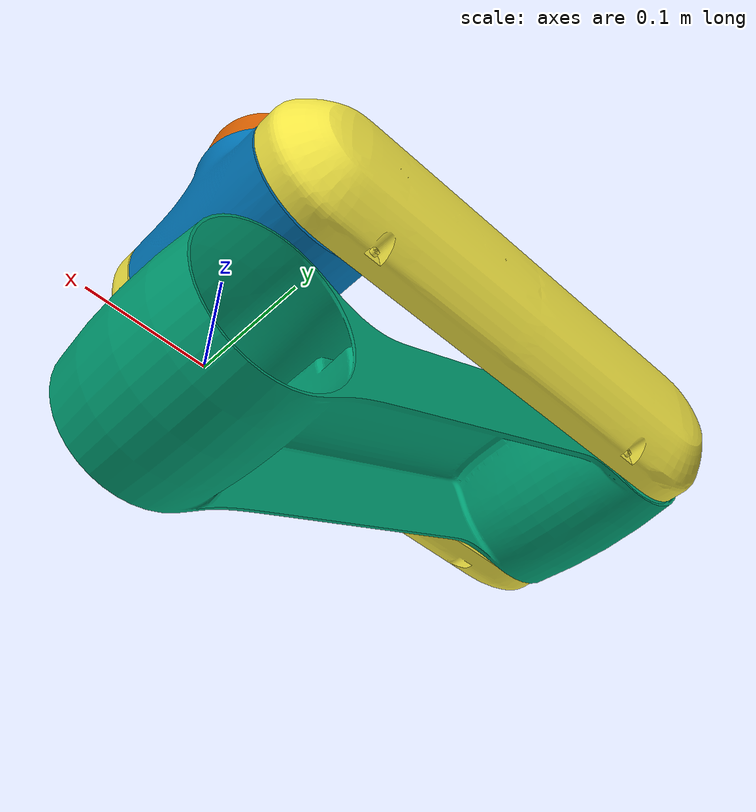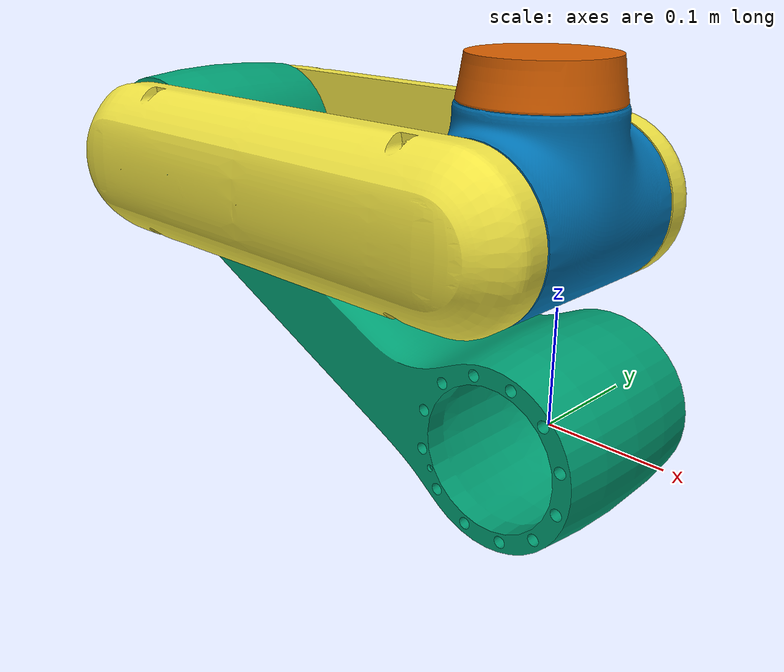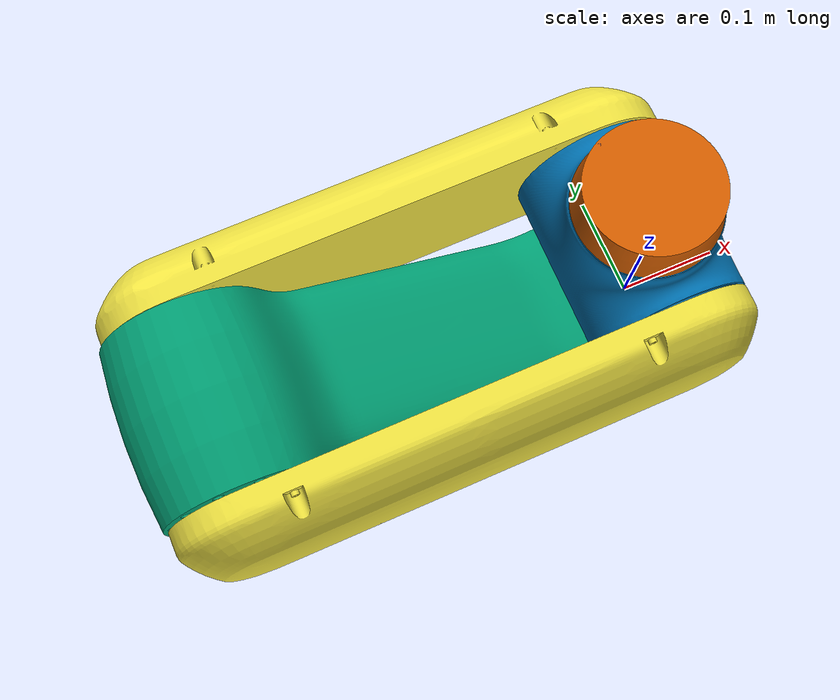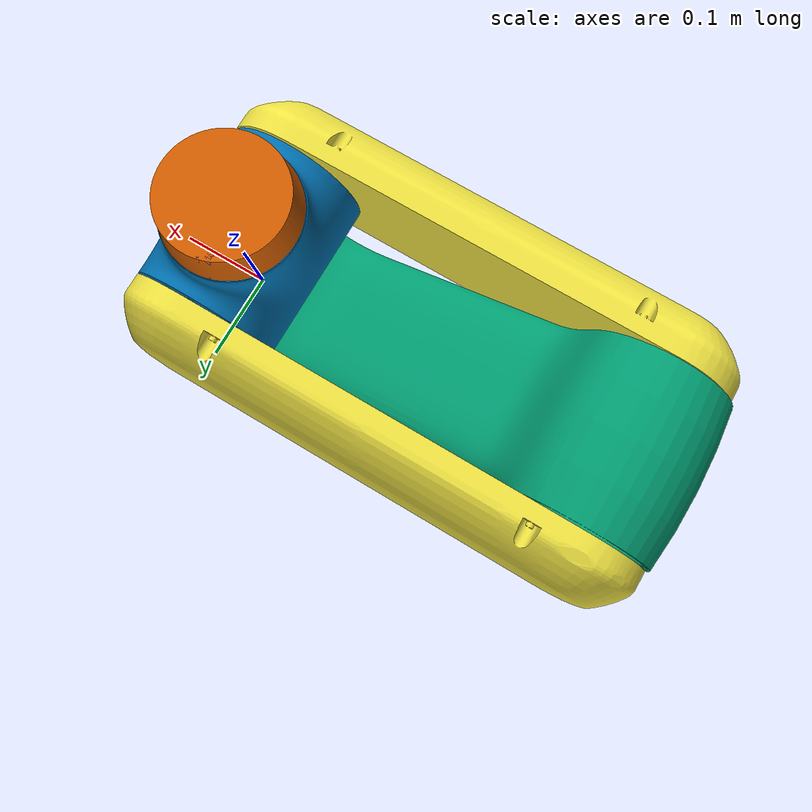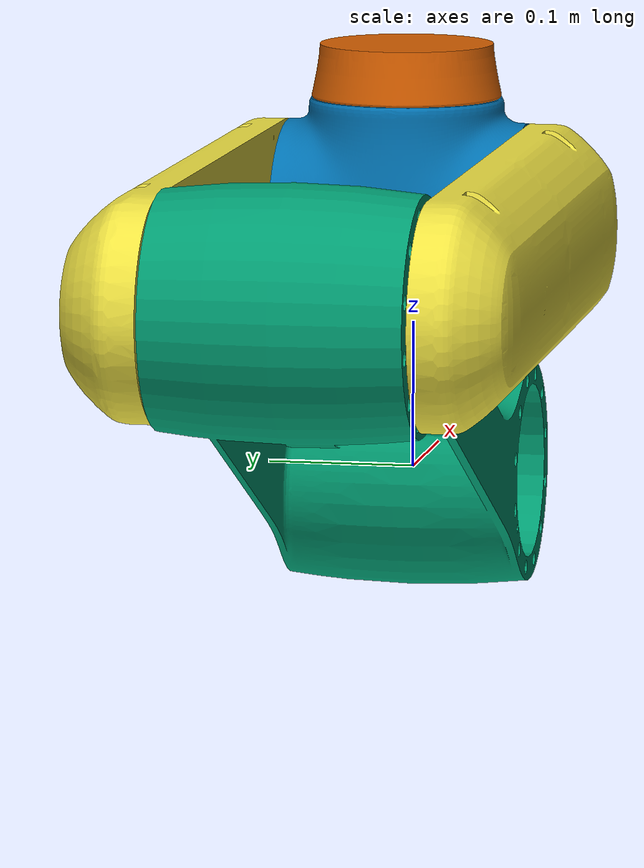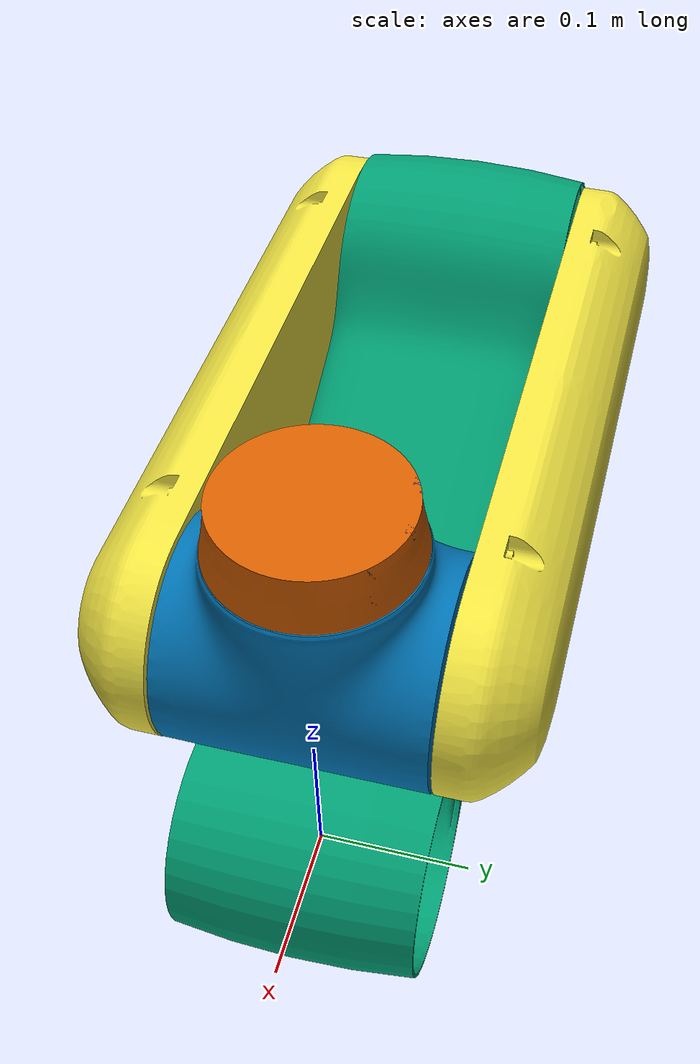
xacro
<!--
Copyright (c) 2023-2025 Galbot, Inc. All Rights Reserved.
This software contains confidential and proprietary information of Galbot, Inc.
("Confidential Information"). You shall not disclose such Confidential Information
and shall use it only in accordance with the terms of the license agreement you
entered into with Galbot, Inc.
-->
<?xml version="1.0"?>
<robot name="leg"
    xmlns:xacro="http://ros.org/wiki/xacro">
    <!-- Arguments -->
    <xacro:arg name="collision_type" default="convex_decomposition" />
    <!-- Include-->
    <xacro:include filename="$(find galbot_one_golf_description)/xacro/leg/leg.xacro" />
    <!-- Properties -->
    <xacro:property name="M_PI" value="3.1415926535897931" />
    <!-- Parent link -->
    <link name="base_link" />
    <xacro:leg parent="base_link" name="leg" collision_type="$(arg collision_type)">
        <origin xyz="0 0 0" rpy="0 0 0" />
    </xacro:leg>
</robot>

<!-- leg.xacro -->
<robot xmlns:xacro="http://ros.org/wiki/xacro" name="leg">

  <xacro:macro name="leg" params="parent *origin name:=leg collision_type:=convex_decomposition">
    <xacro:property name="M_PI" value="3.1415926535897931" />

    <joint name="${name}_joint" type="fixed">
      <xacro:insert_block name="origin" />
      <parent link="${parent}" />
      <child link="${name}_base_link" />
    </joint>

    <link name="${name}_base_link">
      <inertial>
        <origin xyz="7.000000000000001e-05 -0.05414 0.0" rpy="0 0 0" />
        <mass value="1.58" />
        <inertia ixx="0.00797474" ixy="8.35e-06" ixz="2e-08" iyy="0.00248067" iyz="6.9e-07"
          izz="0.00797203" />
      </inertial>
    </link>

    <link name="${name}_link1">
      <inertial>
        <origin xyz="0.21883000000000002 0.00219 -0.0046" rpy="0 0 0" />
        <mass value="5.28" />
        <inertia ixx="0.0245158" ixy="0.003598" ixz="-0.004119" iyy="0.46437793" iyz="2.301e-05"
          izz="0.46079615" />
      </inertial>
      <visual>
        <origin xyz="0 0 0" rpy="0 0 0" />
        <geometry>
          <mesh
            filename="package://galbot_one_golf_description/meshes/visual/leg/leg_link1/obj/leg_link1.obj" />
        </geometry>
      </visual>
      <xacro:if value="${collision_type == 'sphere'}">
        <collision>
          <origin xyz="0.0 0.0 0.0" rpy="0 0 0" /> <!-- center: [0.0, 0.0, 0.0] -->
          <geometry>
            <sphere radius="0.095" />
          </geometry>
        </collision>
        <collision>
          <origin xyz="0.1 -0.03 0.0" rpy="0 0 0" /> <!-- center: [0.1, -0.03, 0.0] -->
          <geometry>
            <sphere radius="0.095" />
          </geometry>
        </collision>
        <collision>
          <origin xyz="0.22 -0.03 0.0" rpy="0 0 0" /> <!-- center: [0.22, -0.03, 0.0] -->
          <geometry>
            <sphere radius="0.095" />
          </geometry>
        </collision>
        <collision>
          <origin xyz="0.33 -0.03 0.0" rpy="0 0 0" /> <!-- center: [0.33, -0.03, 0.0] -->
          <geometry>
            <sphere radius="0.095" />
          </geometry>
        </collision>
      </xacro:if>
      <xacro:if value="${collision_type == 'mesh'}">
        <collision>
          <origin xyz="0 0 0" rpy="0 0 0" />
          <geometry>
            <mesh
              filename="package://galbot_one_golf_description/meshes/collision/leg/leg_link1/original/leg_link1.stl" />
          </geometry>
        </collision>
      </xacro:if>
      <xacro:if value="${collision_type == 'convex_hull'}">
        <collision>
          <origin xyz="0 0 0" rpy="0 0 0" />
          <geometry>
            <mesh
              filename="package://galbot_one_golf_description/meshes/collision/leg/leg_link1/convex_hull/leg_link1_convex_hull.stl" />
          </geometry>
        </collision>
      </xacro:if>
      <xacro:if value="${collision_type == 'convex_decomposition'}">
        <collision>
          <origin xyz="0 0 0" rpy="0 0 0" />
          <geometry>
            <mesh
              filename="package://galbot_one_golf_description/meshes/collision/leg/leg_link1/convex_decomposition/leg_link1_convex_decomposition_0.stl" />
          </geometry>
        </collision>
        <collision>
          <origin xyz="0 0 0" rpy="0 0 0" />
          <geometry>
            <mesh
              filename="package://galbot_one_golf_description/meshes/collision/leg/leg_link1/convex_decomposition/leg_link1_convex_decomposition_1.stl" />
          </geometry>
        </collision>
        <collision>
          <origin xyz="0 0 0" rpy="0 0 0" />
          <geometry>
            <mesh
              filename="package://galbot_one_golf_description/meshes/collision/leg/leg_link1/convex_decomposition/leg_link1_convex_decomposition_2.stl" />
          </geometry>
        </collision>
        <collision>
          <origin xyz="0 0 0" rpy="0 0 0" />
          <geometry>
            <mesh
              filename="package://galbot_one_golf_description/meshes/collision/leg/leg_link1/convex_decomposition/leg_link1_convex_decomposition_3.stl" />
          </geometry>
        </collision>
      </xacro:if>
    </link>
    <joint name="${name}_joint1" type="revolute">
      <origin xyz="0 0 0" rpy="${M_PI/2} -0.385 ${M_PI}" />
      <parent link="${name}_base_link" />
      <child link="${name}_link1" />
      <axis xyz="0 0 1" />
      <limit lower="0.0" upper="0.9374" effort="169" velocity="1" />
    </joint>

    <link name="${name}_link2">
      <inertial>
        <origin xyz="0.19484 0.0 0.0" rpy="0 0 0" />
        <mass value="3.3" />
        <inertia ixx="0.04156241" ixy="7.2e-07" ixz="1.559e-05" iyy="0.23231617000000002"
          iyz="-2.7799999999999996e-06" izz="0.20323657" />
      </inertial>
      <visual>
        <origin xyz="0 0 0" rpy="0 0 0" />
        <geometry>
          <mesh
            filename="package://galbot_one_golf_description/meshes/visual/leg/leg_link2/obj/leg_link2.obj" />
        </geometry>
      </visual>
      <xacro:if value="${collision_type == 'sphere'}">
        <collision>
          <origin xyz="0.0 0.0 0.0" rpy="0 0 0" />
          <geometry>
            <sphere radius="0.085" />
          </geometry>
        </collision>
        <collision>
          <origin xyz="0.0 0.0 0.06" rpy="0 0 0" />
          <geometry>
            <sphere radius="0.085" />
          </geometry>
        </collision>
        <collision>
          <origin xyz="0.0 0.0 -0.06" rpy="0 0 0" />
          <geometry>
            <sphere radius="0.085" />
          </geometry>
        </collision>
        <collision>
          <origin xyz="0.05 0.0 0.06" rpy="0 0 0" />
          <geometry>
            <sphere radius="0.085" />
          </geometry>
        </collision>
        <collision>
          <origin xyz="0.05 0.0 -0.06" rpy="0 0 0" />
          <geometry>
            <sphere radius="0.085" />
          </geometry>
        </collision>
        <collision>
          <origin xyz="0.1 0.0 0.06" rpy="0 0 0" />
          <geometry>
            <sphere radius="0.085" />
          </geometry>
        </collision>
        <collision>
          <origin xyz="0.1 0.0 -0.06" rpy="0 0 0" />
          <geometry>
            <sphere radius="0.085" />
          </geometry>
        </collision>
        <collision>
          <origin xyz="0.15 0.0 0.06" rpy="0 0 0" />
          <geometry>
            <sphere radius="0.085" />
          </geometry>
        </collision>
        <collision>
          <origin xyz="0.15 0.0 -0.06" rpy="0 0 0" />
          <geometry>
            <sphere radius="0.085" />
          </geometry>
        </collision>
        <collision>
          <origin xyz="0.2 0.0 0.06" rpy="0 0 0" />
          <geometry>
            <sphere radius="0.085" />
          </geometry>
        </collision>
        <collision>
          <origin xyz="0.2 0.0 -0.06" rpy="0 0 0" />
          <geometry>
            <sphere radius="0.085" />
          </geometry>
        </collision>
        <collision>
          <origin xyz="0.25 0.0 0.06" rpy="0 0 0" />
          <geometry>
            <sphere radius="0.085" />
          </geometry>
        </collision>
        <collision>
          <origin xyz="0.25 0.0 -0.06" rpy="0 0 0" />
          <geometry>
            <sphere radius="0.085" />
          </geometry>
        </collision>
        <collision>
          <origin xyz="0.3 0.0 0.06" rpy="0 0 0" />
          <geometry>
            <sphere radius="0.085" />
          </geometry>
        </collision>
        <collision>
          <origin xyz="0.3 0.0 -0.06" rpy="0 0 0" />
          <geometry>
            <sphere radius="0.085" />
          </geometry>
        </collision>
        <collision>
          <origin xyz="0.35 0.0 0.06" rpy="0 0 0" />
          <geometry>
            <sphere radius="0.085" />
          </geometry>
        </collision>
        <collision>
          <origin xyz="0.35 0.0 -0.06" rpy="0 0 0" />
          <geometry>
            <sphere radius="0.085" />
          </geometry>
        </collision>
        <collision>
          <origin xyz="0.4 0.0 0.06" rpy="0 0 0" />
          <geometry>
            <sphere radius="0.085" />
          </geometry>
        </collision>
        <collision>
          <origin xyz="0.4 0.0 -0.06" rpy="0 0 0" />
          <geometry>
            <sphere radius="0.085" />
          </geometry>
        </collision>
        <collision>
          <origin xyz="0.4 0.0 0.0" rpy="0 0 0" />
          <geometry>
            <sphere radius="0.085" />
          </geometry>
        </collision>
      </xacro:if>
      <xacro:if value="${collision_type == 'mesh'}">
        <collision>
          <origin xyz="0 0 0" rpy="0 0 0" />
          <geometry>
            <mesh
              filename="package://galbot_one_golf_description/meshes/collision/leg/leg_link2/original/leg_link2.stl" />
          </geometry>
        </collision>
      </xacro:if>
      <xacro:if value="${collision_type == 'convex_hull'}">
        <collision>
          <origin xyz="0 0 0" rpy="0 0 0" />
          <geometry>
            <mesh
              filename="package://galbot_one_golf_description/meshes/collision/leg/leg_link2/convex_hull/leg_link2_convex_hull.stl" />
          </geometry>
        </collision>
      </xacro:if>
      <xacro:if value="${collision_type == 'convex_decomposition'}">
        <collision>
          <origin xyz="0 0 0" rpy="0 0 0" />
          <geometry>
            <mesh
              filename="package://galbot_one_golf_description/meshes/collision/leg/leg_link2/convex_decomposition/leg_link2_convex_decomposition_0.stl" />
          </geometry>
        </collision>
        <collision>
          <origin xyz="0 0 0" rpy="0 0 0" />
          <geometry>
            <mesh
              filename="package://galbot_one_golf_description/meshes/collision/leg/leg_link2/convex_decomposition/leg_link2_convex_decomposition_1.stl" />
          </geometry>
        </collision>
      </xacro:if>
    </link>
    <joint name="${name}_joint2" type="revolute">
      <origin xyz="0.45 0 0" rpy="${M_PI} 0 2.7566" />
      <parent link="${name}_link1" />
      <child link="${name}_link2" />
      <axis xyz="0 0 1" />
      <limit lower="0.0" upper="2.5847" effort="169" velocity="1" />
    </joint>

    <link name="${name}_link3">
      <inertial>
        <origin xyz="2e-05 0.01881 -0.011" rpy="0 0 0" />
        <mass value="1.76" />
        <inertia ixx="0.01102444" ixy="1.13e-06" ixz="-1.26e-06" iyy="0.00878281" iyz="1.26e-06"
          izz="0.0106222" />
      </inertial>
      <visual>
        <origin xyz="0 0 0" rpy="0 0 0" />
        <geometry>
          <mesh
            filename="package://galbot_one_golf_description/meshes/visual/leg/leg_link3/obj/leg_link3.obj" />
        </geometry>
      </visual>
      <xacro:if value="${collision_type == 'sphere'}">
        <collision>
          <origin xyz="0 0 0" rpy="0 0 0" />
          <geometry>
            <sphere radius="0.1" />
          </geometry>
        </collision>
      </xacro:if>
      <xacro:if value="${collision_type == 'mesh'}">
        <collision>
          <origin xyz="0 0 0" rpy="0 0 0" />
          <geometry>
            <mesh
              filename="package://galbot_one_golf_description/meshes/collision/leg/leg_link3/original/leg_link3.stl" />
          </geometry>
        </collision>
      </xacro:if>
      <xacro:if value="${collision_type == 'convex_hull'}">
        <collision>
          <origin xyz="0 0 0" rpy="0 0 0" />
          <geometry>
            <mesh
              filename="package://galbot_one_golf_description/meshes/collision/leg/leg_link3/convex_hull/leg_link3_convex_hull.stl" />
          </geometry>
        </collision>
      </xacro:if>
      <xacro:if value="${collision_type == 'convex_decomposition'}">
        <collision>
          <origin xyz="0 0 0" rpy="0 0 0" />
          <geometry>
            <mesh
              filename="package://galbot_one_golf_description/meshes/collision/leg/leg_link3/convex_decomposition/leg_link3_convex_decomposition_0.stl" />
          </geometry>
        </collision>
        <collision>
          <origin xyz="0 0 0" rpy="0 0 0" />
          <geometry>
            <mesh
              filename="package://galbot_one_golf_description/meshes/collision/leg/leg_link3/convex_decomposition/leg_link3_convex_decomposition_1.stl" />
          </geometry>
        </collision>
        <collision>
          <origin xyz="0 0 0" rpy="0 0 0" />
          <geometry>
            <mesh
              filename="package://galbot_one_golf_description/meshes/collision/leg/leg_link3/convex_decomposition/leg_link3_convex_decomposition_2.stl" />
          </geometry>
        </collision>
        <collision>
          <origin xyz="0 0 0" rpy="0 0 0" />
          <geometry>
            <mesh
              filename="package://galbot_one_golf_description/meshes/collision/leg/leg_link3/convex_decomposition/leg_link3_convex_decomposition_3.stl" />
          </geometry>
        </collision>
        <collision>
          <origin xyz="0 0 0" rpy="0 0 0" />
          <geometry>
            <mesh
              filename="package://galbot_one_golf_description/meshes/collision/leg/leg_link3/convex_decomposition/leg_link3_convex_decomposition_4.stl" />
          </geometry>
        </collision>
        <collision>
          <origin xyz="0 0 0" rpy="0 0 0" />
          <geometry>
            <mesh
              filename="package://galbot_one_golf_description/meshes/collision/leg/leg_link3/convex_decomposition/leg_link3_convex_decomposition_5.stl" />
          </geometry>
        </collision>
        <collision>
          <origin xyz="0 0 0" rpy="0 0 0" />
          <geometry>
            <mesh
              filename="package://galbot_one_golf_description/meshes/collision/leg/leg_link3/convex_decomposition/leg_link3_convex_decomposition_6.stl" />
          </geometry>
        </collision>
        <collision>
          <origin xyz="0 0 0" rpy="0 0 0" />
          <geometry>
            <mesh
              filename="package://galbot_one_golf_description/meshes/collision/leg/leg_link3/convex_decomposition/leg_link3_convex_decomposition_7.stl" />
          </geometry>
        </collision>
        <collision>
          <origin xyz="0 0 0" rpy="0 0 0" />
          <geometry>
            <mesh
              filename="package://galbot_one_golf_description/meshes/collision/leg/leg_link3/convex_decomposition/leg_link3_convex_decomposition_8.stl" />
          </geometry>
        </collision>
        <collision>
          <origin xyz="0 0 0" rpy="0 0 0" />
          <geometry>
            <mesh
              filename="package://galbot_one_golf_description/meshes/collision/leg/leg_link3/convex_decomposition/leg_link3_convex_decomposition_9.stl" />
          </geometry>
        </collision>
        <collision>
          <origin xyz="0 0 0" rpy="0 0 0" />
          <geometry>
            <mesh
              filename="package://galbot_one_golf_description/meshes/collision/leg/leg_link3/convex_decomposition/leg_link3_convex_decomposition_10.stl" />
          </geometry>
        </collision>
        <collision>
          <origin xyz="0 0 0" rpy="0 0 0" />
          <geometry>
            <mesh
              filename="package://galbot_one_golf_description/meshes/collision/leg/leg_link3/convex_decomposition/leg_link3_convex_decomposition_11.stl" />
          </geometry>
        </collision>
        <collision>
          <origin xyz="0 0 0" rpy="0 0 0" />
          <geometry>
            <mesh
              filename="package://galbot_one_golf_description/meshes/collision/leg/leg_link3/convex_decomposition/leg_link3_convex_decomposition_12.stl" />
          </geometry>
        </collision>
        <collision>
          <origin xyz="0 0 0" rpy="0 0 0" />
          <geometry>
            <mesh
              filename="package://galbot_one_golf_description/meshes/collision/leg/leg_link3/convex_decomposition/leg_link3_convex_decomposition_13.stl" />
          </geometry>
        </collision>
        <collision>
          <origin xyz="0 0 0" rpy="0 0 0" />
          <geometry>
            <mesh
              filename="package://galbot_one_golf_description/meshes/collision/leg/leg_link3/convex_decomposition/leg_link3_convex_decomposition_14.stl" />
          </geometry>
        </collision>
        <collision>
          <origin xyz="0 0 0" rpy="0 0 0" />
          <geometry>
            <mesh
              filename="package://galbot_one_golf_description/meshes/collision/leg/leg_link3/convex_decomposition/leg_link3_convex_decomposition_15.stl" />
          </geometry>
        </collision>
      </xacro:if>
    </link>
    <joint name="${name}_joint3" type="revolute">
      <origin xyz="0.39 0 0" rpy="${M_PI} 0 ${M_PI}" />
      <parent link="${name}_link2" />
      <child link="${name}_link3" />
      <axis xyz="0 0 1" />
      <limit lower="0.0" upper="2.3262" effort="84" velocity="1" />
    </joint>

    <link name="${name}_link4">
      <inertial>
        <origin xyz="0.0 -0.0059900000000000005 -0.06877" rpy="0 0 0" />
        <mass value="0.72" />
        <inertia ixx="0.00580757" ixy="0.0" ixz="0.0" iyy="0.00591483" iyz="4.67e-06"
          izz="0.0014004900000000001" />
      </inertial>
      <visual>
        <origin xyz="0 0 0" rpy="0 0 0" />
        <geometry>
          <mesh
            filename="package://galbot_one_golf_description/meshes/visual/leg/leg_link4/obj/leg_link4.obj" />
        </geometry>
      </visual>
      <xacro:if value="${collision_type == 'sphere'}">
        <collision>
          <origin xyz="0 0 0" rpy="0 0 0" />
          <geometry>
            <sphere radius="0.1" />
          </geometry>
        </collision>
      </xacro:if>
      <xacro:if value="${collision_type == 'mesh'}">
        <collision>
          <origin xyz="0 0 0" rpy="0 0 0" />
          <geometry>
            <mesh
              filename="package://galbot_one_golf_description/meshes/collision/leg/leg_link4/original/leg_link4.stl" />
          </geometry>
        </collision>
      </xacro:if>
      <xacro:if value="${collision_type == 'convex_hull'}">
        <collision>
          <origin xyz="0 0 0" rpy="0 0 0" />
          <geometry>
            <mesh
              filename="package://galbot_one_golf_description/meshes/collision/leg/leg_link4/convex_hull/leg_link4_convex_hull.stl" />
          </geometry>
        </collision>
      </xacro:if>
      <xacro:if value="${collision_type == 'convex_decomposition'}">
        <collision>
          <origin xyz="0 0 0" rpy="0 0 0" />
          <geometry>
            <mesh
              filename="package://galbot_one_golf_description/meshes/collision/leg/leg_link4/convex_decomposition/leg_link4_convex_decomposition_0.stl" />
          </geometry>
        </collision>
        <collision>
          <origin xyz="0 0 0" rpy="0 0 0" />
          <geometry>
            <mesh
              filename="package://galbot_one_golf_description/meshes/collision/leg/leg_link4/convex_decomposition/leg_link4_convex_decomposition_1.stl" />
          </geometry>
        </collision>
        <collision>
          <origin xyz="0 0 0" rpy="0 0 0" />
          <geometry>
            <mesh
              filename="package://galbot_one_golf_description/meshes/collision/leg/leg_link4/convex_decomposition/leg_link4_convex_decomposition_2.stl" />
          </geometry>
        </collision>
        <collision>
          <origin xyz="0 0 0" rpy="0 0 0" />
          <geometry>
            <mesh
              filename="package://galbot_one_golf_description/meshes/collision/leg/leg_link4/convex_decomposition/leg_link4_convex_decomposition_3.stl" />
          </geometry>
        </collision>
        <collision>
          <origin xyz="0 0 0" rpy="0 0 0" />
          <geometry>
            <mesh
              filename="package://galbot_one_golf_description/meshes/collision/leg/leg_link4/convex_decomposition/leg_link4_convex_decomposition_4.stl" />
          </geometry>
        </collision>
        <collision>
          <origin xyz="0 0 0" rpy="0 0 0" />
          <geometry>
            <mesh
              filename="package://galbot_one_golf_description/meshes/collision/leg/leg_link4/convex_decomposition/leg_link4_convex_decomposition_5.stl" />
          </geometry>
        </collision>
        <collision>
          <origin xyz="0 0 0" rpy="0 0 0" />
          <geometry>
            <mesh
              filename="package://galbot_one_golf_description/meshes/collision/leg/leg_link4/convex_decomposition/leg_link4_convex_decomposition_6.stl" />
          </geometry>
        </collision>
        <collision>
          <origin xyz="0 0 0" rpy="0 0 0" />
          <geometry>
            <mesh
              filename="package://galbot_one_golf_description/meshes/collision/leg/leg_link4/convex_decomposition/leg_link4_convex_decomposition_7.stl" />
          </geometry>
        </collision>
        <collision>
          <origin xyz="0 0 0" rpy="0 0 0" />
          <geometry>
            <mesh
              filename="package://galbot_one_golf_description/meshes/collision/leg/leg_link4/convex_decomposition/leg_link4_convex_decomposition_8.stl" />
          </geometry>
        </collision>
        <collision>
          <origin xyz="0 0 0" rpy="0 0 0" />
          <geometry>
            <mesh
              filename="package://galbot_one_golf_description/meshes/collision/leg/leg_link4/convex_decomposition/leg_link4_convex_decomposition_9.stl" />
          </geometry>
        </collision>
      </xacro:if>
    </link>
    <joint name="${name}_joint4" type="revolute">
      <origin xyz="0 0.224 0" rpy="${-M_PI/2} ${-M_PI/2} 0" />
      <parent link="${name}_link3" />
      <child link="${name}_link4" />
      <axis xyz="0 0 1" />
      <limit lower="-1.5906" upper="1.5906" effort="30" velocity="1" />
    </joint>

    <link name="${name}_link5">
      <inertial>
        <origin xyz="0.0 0.032369999999999996 0.03006" rpy="0 0 0" />
        <mass value="0.41" />
        <inertia ixx="0.00142201" ixy="0.0" ixz="0.0" iyy="0.00132398" iyz="0.00023940999999999999"
          izz="0.00156199" />
      </inertial>
      <visual>
        <origin xyz="0 0 0" rpy="0 0 0" />
        <geometry>
          <mesh
            filename="package://galbot_one_golf_description/meshes/visual/leg/leg_link5/obj/leg_link5.obj" />
        </geometry>
      </visual>
      <xacro:if value="${collision_type == 'sphere'}">
      </xacro:if>
      <xacro:if value="${collision_type == 'mesh'}">
        <collision>
          <origin xyz="0 0 0" rpy="0 0 0" />
          <geometry>
            <mesh
              filename="package://galbot_one_golf_description/meshes/collision/leg/leg_link5/original/leg_link5.stl" />
          </geometry>
        </collision>
      </xacro:if>
      <xacro:if value="${collision_type == 'convex_hull'}">
        <collision>
          <origin xyz="0 0 0" rpy="0 0 0" />
          <geometry>
            <mesh
              filename="package://galbot_one_golf_description/meshes/collision/leg/leg_link5/convex_hull/leg_link5_convex_hull.stl" />
          </geometry>
        </collision>
      </xacro:if>
      <xacro:if value="${collision_type == 'convex_decomposition'}">
        <collision>
          <origin xyz="0 0 0" rpy="0 0 0" />
          <geometry>
            <mesh
              filename="package://galbot_one_golf_description/meshes/collision/leg/leg_link5/convex_decomposition/leg_link5_convex_decomposition_0.stl" />
          </geometry>
        </collision>
        <collision>
          <origin xyz="0 0 0" rpy="0 0 0" />
          <geometry>
            <mesh
              filename="package://galbot_one_golf_description/meshes/collision/leg/leg_link5/convex_decomposition/leg_link5_convex_decomposition_1.stl" />
          </geometry>
        </collision>
        <collision>
          <origin xyz="0 0 0" rpy="0 0 0" />
          <geometry>
            <mesh
              filename="package://galbot_one_golf_description/meshes/collision/leg/leg_link5/convex_decomposition/leg_link5_convex_decomposition_2.stl" />
          </geometry>
        </collision>
        <collision>
          <origin xyz="0 0 0" rpy="0 0 0" />
          <geometry>
            <mesh
              filename="package://galbot_one_golf_description/meshes/collision/leg/leg_link5/convex_decomposition/leg_link5_convex_decomposition_3.stl" />
          </geometry>
        </collision>
        <collision>
          <origin xyz="0 0 0" rpy="0 0 0" />
          <geometry>
            <mesh
              filename="package://galbot_one_golf_description/meshes/collision/leg/leg_link5/convex_decomposition/leg_link5_convex_decomposition_4.stl" />
          </geometry>
        </collision>
        <collision>
          <origin xyz="0 0 0" rpy="0 0 0" />
          <geometry>
            <mesh
              filename="package://galbot_one_golf_description/meshes/collision/leg/leg_link5/convex_decomposition/leg_link5_convex_decomposition_5.stl" />
          </geometry>
        </collision>
        <collision>
          <origin xyz="0 0 0" rpy="0 0 0" />
          <geometry>
            <mesh
              filename="package://galbot_one_golf_description/meshes/collision/leg/leg_link5/convex_decomposition/leg_link5_convex_decomposition_6.stl" />
          </geometry>
        </collision>
        <collision>
          <origin xyz="0 0 0" rpy="0 0 0" />
          <geometry>
            <mesh
              filename="package://galbot_one_golf_description/meshes/collision/leg/leg_link5/convex_decomposition/leg_link5_convex_decomposition_7.stl" />
          </geometry>
        </collision>
        <collision>
          <origin xyz="0 0 0" rpy="0 0 0" />
          <geometry>
            <mesh
              filename="package://galbot_one_golf_description/meshes/collision/leg/leg_link5/convex_decomposition/leg_link5_convex_decomposition_8.stl" />
          </geometry>
        </collision>
        <collision>
          <origin xyz="0 0 0" rpy="0 0 0" />
          <geometry>
            <mesh
              filename="package://galbot_one_golf_description/meshes/collision/leg/leg_link5/convex_decomposition/leg_link5_convex_decomposition_9.stl" />
          </geometry>
        </collision>
        <collision>
          <origin xyz="0 0 0" rpy="0 0 0" />
          <geometry>
            <mesh
              filename="package://galbot_one_golf_description/meshes/collision/leg/leg_link5/convex_decomposition/leg_link5_convex_decomposition_10.stl" />
          </geometry>
        </collision>
        <collision>
          <origin xyz="0 0 0" rpy="0 0 0" />
          <geometry>
            <mesh
              filename="package://galbot_one_golf_description/meshes/collision/leg/leg_link5/convex_decomposition/leg_link5_convex_decomposition_11.stl" />
          </geometry>
        </collision>
      </xacro:if>
    </link>
    <joint name="${name}_joint5" type="revolute">
      <origin xyz="0 0 0" rpy="${M_PI/2} 0 0" />
      <parent link="${name}_link4" />
      <child link="${name}_link5" />
      <axis xyz="0 0 1" />
      <limit lower="-0.1645" upper="0.1645" effort="30" velocity="1" />  <!-- special soft limit for
      leg joint 5 (0.01 radians)-->
    </joint>

    <link name="${name}_end_effector_mount_link">
      <inertial>
        <origin xyz="0 0 0" rpy="0 0 0" />
        <mass value="0" />
        <inertia ixx="0" ixy="0" ixz="0" iyy="0" iyz="0" izz="0" />
      </inertial>
    </link>
    <joint name="${name}_end_effector_mount_joint" type="fixed">
      <origin xyz="0 0 0" rpy="0 0 0" />
      <parent link="${name}_link5" />
      <child link="${name}_end_effector_mount_link" />
      <axis xyz="0 0 0" />
    </joint>

  </xacro:macro>
</robot>
